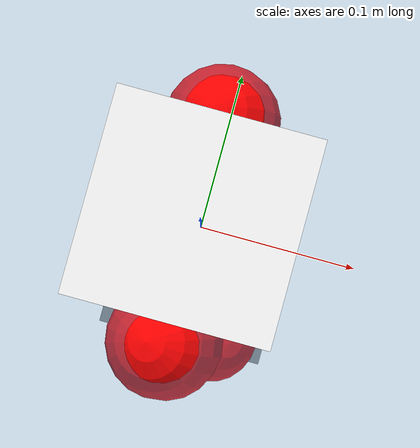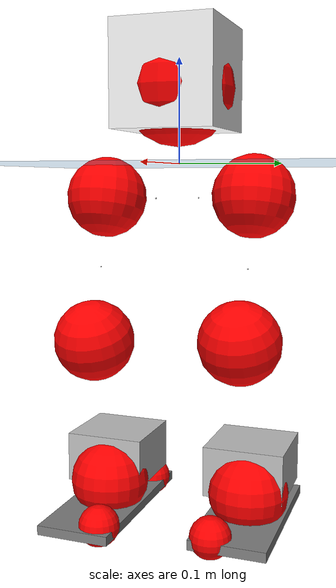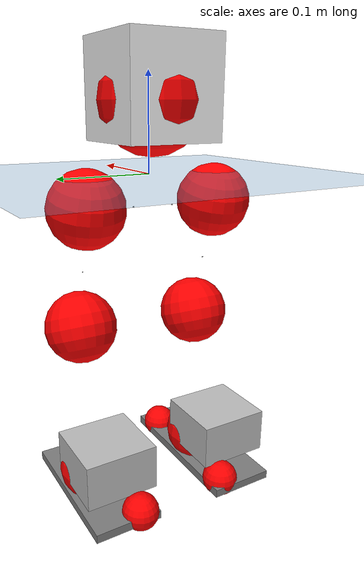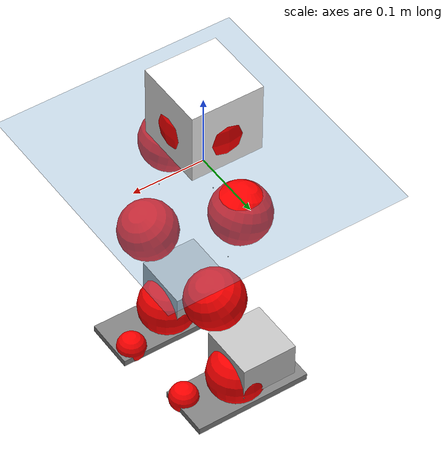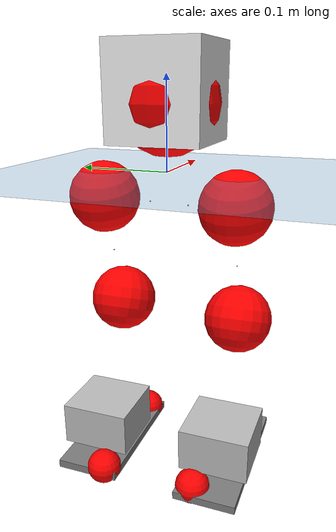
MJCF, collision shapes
<mujoco model="pi_12dof_release_v1">
  <compiler angle="radian" assetdir="assets" balanceinertia="true" inertiafromgeom="false"/>

  <option timestep="0.005" density="1.2" viscosity="2e-05"/>

  <size nkey="1"/>

  <visual>
    <quality shadowsize="8192"/>
    <map shadowclip="0.5"/>
  </visual>

  <default>
    <default class="/">
      <joint armature="0.01" damping="0.01" frictionloss="0.01"/>
      <geom contype="0" conaffinity="0" group="1" solref="-1000 -80"/>
      <site size="0.01 0.005 0.005" group="5"/>
      <general forcelimited="true" biastype="affine" gainprm="20" biasprm="0 -20 -0.5"/>
      <default class="foot">
        <geom size="0.0845 0.036 0.005" type="box" condim="6" group="4" priority="1" friction="0.9 0.2 0.2" solimp="0.015 1 0.005"/>
      </default>
      <default class="reward_collision_sphere">
        <geom group="5" rgba="1 0 0 1"/>
      </default>
    </default>
  </default>

  <asset>
    <texture type="skybox" colorspace="auto" name="//unnamed_texture_0" builtin="gradient" rgb1="0.95 0.95 0.95" rgb2="0.95 0.95 0.95" width="100" height="600"/>
    <texture type="2d" colorspace="auto" name="texplane" builtin="checker" rgb1="0.345 0.575 0.748" rgb2="0.345 0.575 0.748" markrgb="1 1 1" width="512" height="512"/>
    <material name="MatPlane" class="/" texture="texplane" texuniform="true" texrepeat="2 2" specular="0.9"/>
    <mesh name="baselink_1" class="/" file="baselink_1.STL"/>
    <mesh name="r_hip_pitch_link" class="/" file="r_hip_pitch_link.STL"/>
    <mesh name="r_hip_roll_link" class="/" file="r_hip_roll_link.STL"/>
    <mesh name="r_thigh_link" class="/" file="r_thigh_link.STL"/>
    <mesh name="r_calf_link" class="/" file="r_calf_link.STL"/>
    <mesh name="r_ankle_pitch_link" class="/" file="r_ankle_pitch_link.STL"/>
    <mesh name="r_ankle_roll_link" class="/" file="r_ankle_roll_link.STL"/>
    <mesh name="l_hip_pitch_link" class="/" file="l_hip_pitch_link.STL"/>
    <mesh name="l_hip_roll_link" class="/" file="l_hip_roll_link.STL"/>
    <mesh name="l_thigh_link" class="/" file="l_thigh_link.STL"/>
    <mesh name="l_calf_link" class="/" file="l_calf_link.STL"/>
    <mesh name="l_ankle_pitch_link" class="/" file="l_ankle_pitch_link.STL"/>
    <mesh name="l_ankle_roll_link" class="/" file="l_ankle_roll_link.STL"/>
  </asset>

  <worldbody>
    <geom name="floor" class="/" size="100 100 0.125" type="plane" group="0" material="MatPlane"/>
    <light name="toplight_shadow" class="/" pos="0 0 5" dir="0.0990148 0.0990148 -0.990148" type="directional" ambient="0.04 0.04 0.04" diffuse="0.55 0.55 0.55" specular="0.12 0.12 0.12"/>
    <light name="toplight_fill" class="/" pos="0 0 5" dir="0.0990148 0.0990148 -0.990148" type="directional" castshadow="false" ambient="0.04 0.04 0.04" diffuse="0.3 0.3 0.3" specular="0.08 0.08 0.08"/>
    <body name="trunk" pos="-0.00238697 -0.00266238 -0.00075995" quat="0.999999 -0.000517895 -0.00112033 -0.000680584">
      <inertial pos="0.000267455 -0.000210514 0.0413799" quat="0.694866 0.0102315 0.00612073 0.71904" mass="2.15946" diaginertia="0.0117059 0.00640431 0.00504226"/>
      <joint name="//unnamed_joint_0" type="free"/>
      <geom name="//unnamed_geom_1" class="/" type="mesh" density="0" rgba="1 1 1 1" mesh="baselink_1"/>
      <geom name="//unnamed_geom_2" class="/" size="0.0501291 0.0501291 0.0501291" pos="0 0 0.0826924" type="box" rgba="1 1 1 1"/>
      <geom name="//unnamed_geom_3" class="reward_collision_sphere" size="0.055142" pos="0 0 0.0723558"/>
      <site name="imu" class="/" pos="0.00187281 0.00251711 0.00179684" size="0.0100258"/>
      <camera name="track" class="/" pos="0 -1.87353 0" quat="0.707107 0.707107 0 0" mode="trackcom"/>
      <camera name="ego_camera" class="/" pos="0.0777994 0 0.186058" quat="-0.5 -0.5 0.5 0.5"/>
      <body name="r_hip_pitch_link" pos="-0.00186026 -0.0233706 -0.0325208" quat="0.992069 -0.000627537 -0.125694 0.000151388">
        <inertial pos="-0.00103115 -0.0547877 -0.00144825" quat="-0.0188666 0.706427 -0.0278852 0.706985" mass="0.390689" diaginertia="0.000136654 7.08249e-05 0.000103871"/>
        <joint name="r_hip_pitch_joint" class="/" pos="0 0 0" axis="-0.00829768 -0.999955 0.00465943" range="-1.74404 1.25073" armature="0.0101299" damping="0.00640483" frictionloss="0.011379"/>
        <geom name="//unnamed_geom_4" class="/" type="mesh" density="0" rgba="0.75294 0.75294 0.75294 1" mesh="r_hip_pitch_link"/>
        <geom name="//unnamed_geom_5" class="/" size="0.000501291 0.000501291 0.000501291" type="box" rgba="0.75294 0.75294 0.75294 1"/>
        <body name="r_hip_roll_link" pos="0.000178005 -0.0529004 0.000717673" quat="1 -5.11626e-06 5.68698e-06 -1.08684e-05">
          <inertial pos="0.000608884 -0.000829306 -0.0604484" quat="0.704912 -0.0784046 -0.0812992 0.700245" mass="0.395404" diaginertia="0.000406324 0.000200209 0.000150692"/>
          <joint name="r_hip_roll_joint" class="/" pos="0 0 0" axis="-0.999999 0.000790426 0.000921879" stiffness="0.0104525" range="-0.176413 0.529953" armature="0.0085883" damping="0" frictionloss="0.010157"/>
          <geom name="//unnamed_geom_6" class="/" type="mesh" density="0" rgba="0.75294 0.75294 0.75294 1" mesh="r_hip_roll_link"/>
          <geom name="//unnamed_geom_7" class="/" size="0.000501291 0.000501291 0.000501291" type="box" rgba="0.75294 0.75294 0.75294 1"/>
          <geom name="//unnamed_geom_8" class="reward_collision_sphere" size="0.0401033"/>
          <body name="r_thigh_link" pos="-0.00130002 0.000149115 -0.0709712" quat="0.999999 0.000102652 -0.000701361 0.00104616">
            <inertial pos="0.00244585 0.00222483 -0.0517637" quat="0.73616 0.676672 -0.00561124 -0.0123489" mass="0.112978" diaginertia="0.000149538 6.96119e-05 6.60466e-05"/>
            <joint name="r_thigh_joint" class="/" pos="0 0 0" axis="-0.000386082 -0.0123115 -0.999924" range="-0.300806 0.644869" armature="0.00860917" damping="0.0101542" frictionloss="0.0101459"/>
            <geom name="//unnamed_geom_9" class="/" type="mesh" density="0" rgba="0.75294 0.75294 0.75294 1" mesh="r_thigh_link"/>
            <geom name="//unnamed_geom_10" class="/" size="0.000501291 0.000501291 0.000501291" type="box" rgba="0.75294 0.75294 0.75294 1"/>
            <body name="r_calf_link" pos="-0.00110537 0.000150584 -0.0736831" quat="0.947797 -0.000444751 0.318874 -0.000280985">
              <inertial pos="0.00242022 -0.00099174 -0.0722738" quat="0.999984 -0.00310958 8.23912e-05 0.00472754" mass="0.863876" diaginertia="0.00442748 0.00263479 0.000206338"/>
              <joint name="r_calf_joint" class="/" pos="0 0 0" axis="9.43976e-06 -1 2.32905e-05" stiffness="0.0106741" range="-1.64766 0.59263" armature="0.0111254" damping="0.00171418" frictionloss="0.0110527"/>
              <geom name="//unnamed_geom_11" class="/" type="mesh" density="0" rgba="0.75294 0.75294 0.75294 1" mesh="r_calf_link"/>
              <geom name="//unnamed_geom_12" class="/" size="0.000501291 0.000501291 0.000501291" type="box" rgba="0.75294 0.75294 0.75294 1"/>
              <geom name="//unnamed_geom_13" class="reward_collision_sphere" size="0.0401033"/>
              <body name="r_ankle_pitch_link" pos="-0.000769735 0.00128884 -0.141988" quat="0.979984 -0.000684772 -0.199073 -0.000988275">
                <inertial pos="0.00221977 0.00139773 -0.000100158" quat="0.00350261 0.708839 -0.00668836 0.70533" mass="0.171756" diaginertia="0.00036906 0.000156701 0.000135549"/>
                <joint name="r_ankle_pitch_joint" class="/" pos="0 0 0" axis="-0.0103337 -0.999938 -0.00421934" range="-1.35361 0.556721" armature="0.0106434" damping="0.0102322" frictionloss="0.00872124"/>
                <geom name="//unnamed_geom_14" class="/" type="mesh" density="0" rgba="0.75294 0.75294 0.75294 1" mesh="r_ankle_pitch_link"/>
                <geom name="//unnamed_geom_15" class="/" size="0.0391007 0.0401033 0.0250645" type="box" rgba="0.75294 0.75294 0.75294 1"/>
                <body name="r_ankle_roll_link" pos="0.0816364 0.00317022 -0.000469576" quat="1 -3.44261e-06 -5.20746e-07 -2.28471e-06">
                  <inertial pos="-0.022522 3.25852e-05 -0.0147845" quat="0.560958 0.430034 0.437924 0.555536" mass="0.538285" diaginertia="0.0014561 0.000743954 0.000346127"/>
                  <joint name="r_ankle_roll_joint" class="/" pos="0 0 0" axis="-0.999969 0.000361053 -0.00783601" range="-0.135881 0.0948675" armature="0.00939854" damping="0" frictionloss="0.010298"/>
                  <geom name="//unnamed_geom_16" class="/" type="mesh" density="0" rgba="0.75294 0.75294 0.75294 1" mesh="r_ankle_roll_link"/>
                  <geom name="//unnamed_geom_17" class="/" type="mesh" rgba="0.75294 0.75294 0.75294 1" mesh="r_ankle_roll_link"/>
                  <geom name="right_foot" class="foot" size="0.0902463 0.0362569 0.0046323" pos="-0.0529036 0 -0.0454808"/>
                  <geom name="//unnamed_geom_19" class="reward_collision_sphere" size="0.0401033" pos="-0.0518663 0 -0.0206731"/>
                  <geom name="//unnamed_geom_20" class="reward_collision_sphere" size="0.0200516" pos="0.0155599 0.0187353 -0.0413462"/>
                  <geom name="//unnamed_geom_21" class="reward_collision_sphere" size="0.0200516" pos="-0.124479 0.0187353 -0.0413462"/>
                  <site name="right_foot" class="foot" pos="-0.0529036 0 -0.0454808" size="0.0100258"/>
                </body>
              </body>
            </body>
          </body>
        </body>
      </body>
      <body name="l_hip_pitch_link" pos="0.000474406 0.0216166 -0.0316755" quat="0.992236 0.000279845 -0.124366 0.000574844">
        <inertial pos="0.00324636 0.0510651 -7.78032e-05" quat="-0.0384121 0.705159 0.0297926 0.70738" mass="0.388623" diaginertia="0.000153724 7.83578e-05 0.000119487"/>
        <joint name="l_hip_pitch_joint" class="/" pos="0 0 0" axis="-0.00257714 0.999996 0.00125512" range="-1.20352 1.75798" armature="0.0114352" damping="0" frictionloss="0.0105447"/>
        <geom name="//unnamed_geom_22" class="/" type="mesh" density="0" rgba="0.75294 0.75294 0.75294 1" mesh="l_hip_pitch_link"/>
        <geom name="//unnamed_geom_23" class="/" size="0.000501291 0.000501291 0.000501291" type="box" rgba="0.75294 0.75294 0.75294 1"/>
        <body name="l_hip_roll_link" pos="-0.00270382 0.0539817 0.00277495" quat="0.999999 0.000213759 2.65062e-05 0.00126609">
          <inertial pos="-0.00104757 0.000766702 -0.0623229" quat="0.70339 -0.0842266 -0.0694735 0.702369" mass="0.377837" diaginertia="0.000398987 0.000193223 0.000152043"/>
          <joint name="l_hip_roll_joint" class="/" pos="0 0 0" axis="-0.999992 -0.00361397 -0.00176571" stiffness="0.00748027" range="-0.500049 0.0998762" armature="0.0114552" damping="0.000160257" frictionloss="0.0108438"/>
          <geom name="//unnamed_geom_24" class="/" type="mesh" density="0" rgba="0.75294 0.75294 0.75294 1" mesh="l_hip_roll_link"/>
          <geom name="//unnamed_geom_25" class="/" size="0.000501291 0.000501291 0.000501291" type="box" rgba="0.75294 0.75294 0.75294 1"/>
          <geom name="//unnamed_geom_26" class="reward_collision_sphere" size="0.0401033"/>
          <body name="l_thigh_link" pos="-0.00019373 -0.000579595 -0.0697625" quat="1 -8.03185e-05 -0.000136242 -6.29618e-05">
            <inertial pos="0.000255374 -0.00181501 -0.0470313" quat="0.675256 0.737581 0.00130045 0.000896996" mass="0.113288" diaginertia="0.000150647 6.87506e-05 6.88054e-05"/>
            <joint name="l_thigh_joint" class="/" pos="0 0 0" axis="-0.00447292 -0.00263284 -0.999987" stiffness="0.00103131" range="-0.604262 0.322668" armature="0.00892315" damping="0.00346461" frictionloss="0.0105543"/>
            <geom name="//unnamed_geom_27" class="/" type="mesh" density="0" rgba="0.75294 0.75294 0.75294 1" mesh="l_thigh_link"/>
            <geom name="//unnamed_geom_28" class="/" size="0.000501291 0.000501291 0.000501291" type="box" rgba="0.75294 0.75294 0.75294 1"/>
            <body name="l_calf_link" pos="-0.00029621 -0.00265099 -0.0700252" quat="0.947459 -0.00124083 0.319876 0.000388882">
              <inertial pos="0.000439795 0.00578253 -0.0725122" quat="0.999945 0.00658008 0.0028077 -0.00771217" mass="0.816546" diaginertia="0.00431492 0.0025836 0.000202471"/>
              <joint name="l_calf_joint" class="/" pos="0 0 0" axis="0.00436623 0.999984 0.00367272" range="-0.629041 1.63156" armature="0.00895834" damping="0.0115364" frictionloss="0.0111907"/>
              <geom name="//unnamed_geom_29" class="/" type="mesh" density="0" rgba="0.75294 0.75294 0.75294 1" mesh="l_calf_link"/>
              <geom name="//unnamed_geom_30" class="/" size="0.000501291 0.000501291 0.000501291" type="box" rgba="0.75294 0.75294 0.75294 1"/>
              <geom name="//unnamed_geom_31" class="reward_collision_sphere" size="0.0401033"/>
              <body name="l_ankle_pitch_link" pos="0.000626667 -0.000473153 -0.14778" quat="0.980065 3.0488e-06 -0.198677 -0.000670456">
                <inertial pos="0.00518758 -0.00258231 0.000282338" quat="-0.00234178 0.706836 0.00207128 0.70737" mass="0.172631" diaginertia="0.000362298 0.000158334 0.000135687"/>
                <joint name="l_ankle_pitch_joint" class="/" pos="0 0 0" axis="0.00284173 0.999989 0.00380325" stiffness="0.00377695" range="-0.485134 1.3048" armature="0.0100681" damping="0.010844" frictionloss="0.0105653"/>
                <geom name="//unnamed_geom_32" class="/" type="mesh" density="0" rgba="0.75294 0.75294 0.75294 1" mesh="l_ankle_pitch_link"/>
                <geom name="//unnamed_geom_33" class="/" size="0.0391007 0.0401033 0.0250645" type="box" rgba="0.75294 0.75294 0.75294 1"/>
                <body name="l_ankle_roll_link" pos="0.0766317 0.0030354 0.000403686" quat="1 7.87555e-05 -0.00049319 0.000149211">
                  <inertial pos="-0.0230269 -0.000642905 -0.0130327" quat="0.562056 0.432147 0.433239 0.556458" mass="0.521069" diaginertia="0.00135351 0.000698213 0.000335146"/>
                  <joint name="l_ankle_roll_joint" class="/" pos="0 0 0" axis="-0.999892 0.0136394 -0.00550043" range="-0.147805 0.155033" armature="0.00986683" damping="0.0189537" frictionloss="0.00974889"/>
                  <geom name="//unnamed_geom_34" class="/" type="mesh" density="0" rgba="0.75294 0.75294 0.75294 1" mesh="l_ankle_roll_link"/>
                  <geom name="//unnamed_geom_35" class="/" type="mesh" rgba="0.75294 0.75294 0.75294 1" mesh="l_ankle_roll_link"/>
                  <geom name="left_foot" class="foot" size="0.0823488 0.037245 0.00483021" pos="-0.0529036 0 -0.0454808"/>
                  <geom name="//unnamed_geom_37" class="reward_collision_sphere" size="0.0401033" pos="-0.0518663 0 -0.0206731"/>
                  <geom name="//unnamed_geom_38" class="reward_collision_sphere" size="0.0200516" pos="0.0155599 -0.0187353 -0.0413462"/>
                  <geom name="//unnamed_geom_39" class="reward_collision_sphere" size="0.0200516" pos="-0.124479 -0.0187353 -0.0413462"/>
                  <site name="left_foot" class="foot" pos="-0.0529036 0 -0.0454808" size="0.0100258"/>
                </body>
              </body>
            </body>
          </body>
        </body>
      </body>
    </body>
  </worldbody>

  <contact>
    <pair class="/" geom1="floor" geom2="right_foot" name="//unnamed_contact_1"/>
    <pair class="/" geom1="floor" geom2="left_foot" name="//unnamed_contact_0"/>
  </contact>

  <actuator>
    <general name="r_hip_pitch_joint" class="/" joint="r_hip_pitch_joint" forcerange="-21.7548 21.7548" gainprm="19.5731" biasprm="0 -19.5731 -0.477573"/>
    <general name="r_hip_roll_joint" class="/" joint="r_hip_roll_joint" forcerange="-21.2579 21.2579" gainprm="19.5731" biasprm="0 -19.5731 -0.477573"/>
    <general name="r_thigh_joint" class="/" joint="r_thigh_joint" forcerange="-21.2225 21.2225" gainprm="19.5731" biasprm="0 -19.5731 -0.477573"/>
    <general name="r_calf_joint" class="/" joint="r_calf_joint" forcerange="-21.8384 21.8384" gainprm="19.5731" biasprm="0 -19.5731 -0.477573"/>
    <general name="r_ankle_pitch_joint" class="/" joint="r_ankle_pitch_joint" forcerange="-20.2868 20.2868" gainprm="19.5731" biasprm="0 -19.5731 -0.477573"/>
    <general name="r_ankle_roll_joint" class="/" joint="r_ankle_roll_joint" forcerange="-21.8235 21.8235" gainprm="19.5731" biasprm="0 -19.5731 -0.477573"/>
    <general name="l_hip_pitch_joint" class="/" joint="l_hip_pitch_joint" forcerange="-21.0862 21.0862" gainprm="19.5731" biasprm="0 -19.5731 -0.477573"/>
    <general name="l_hip_roll_joint" class="/" joint="l_hip_roll_joint" forcerange="-19.6766 19.6766" gainprm="19.5731" biasprm="0 -19.5731 -0.477573"/>
    <general name="l_thigh_joint" class="/" joint="l_thigh_joint" forcerange="-20.9486 20.9486" gainprm="19.5731" biasprm="0 -19.5731 -0.477573"/>
    <general name="l_calf_joint" class="/" joint="l_calf_joint" forcerange="-22.6354 22.6354" gainprm="19.5731" biasprm="0 -19.5731 -0.477573"/>
    <general name="l_ankle_pitch_joint" class="/" joint="l_ankle_pitch_joint" forcerange="-21.0509 21.0509" gainprm="19.5731" biasprm="0 -19.5731 -0.477573"/>
    <general name="l_ankle_roll_joint" class="/" joint="l_ankle_roll_joint" forcerange="-18.8691 18.8691" gainprm="19.5731" biasprm="0 -19.5731 -0.477573"/>
  </actuator>

  <sensor>
    <gyro site="imu" name="imu_angular_velocity"/>
    <velocimeter site="imu" name="imu_linear_velocity"/>
    <framelinvel objtype="site" objname="left_foot" name="left_foot_global_linear_velocity"/>
    <framelinvel objtype="site" objname="right_foot" name="right_foot_global_linear_velocity"/>
  </sensor>

  <keyframe>
    <key name="home" qpos="0 0 0.291 1 0 0 0 0.4 0 0 -0.8 0.4 0 -0.4 0 0 0.8 -0.4 0"/>
  </keyframe>
</mujoco>
